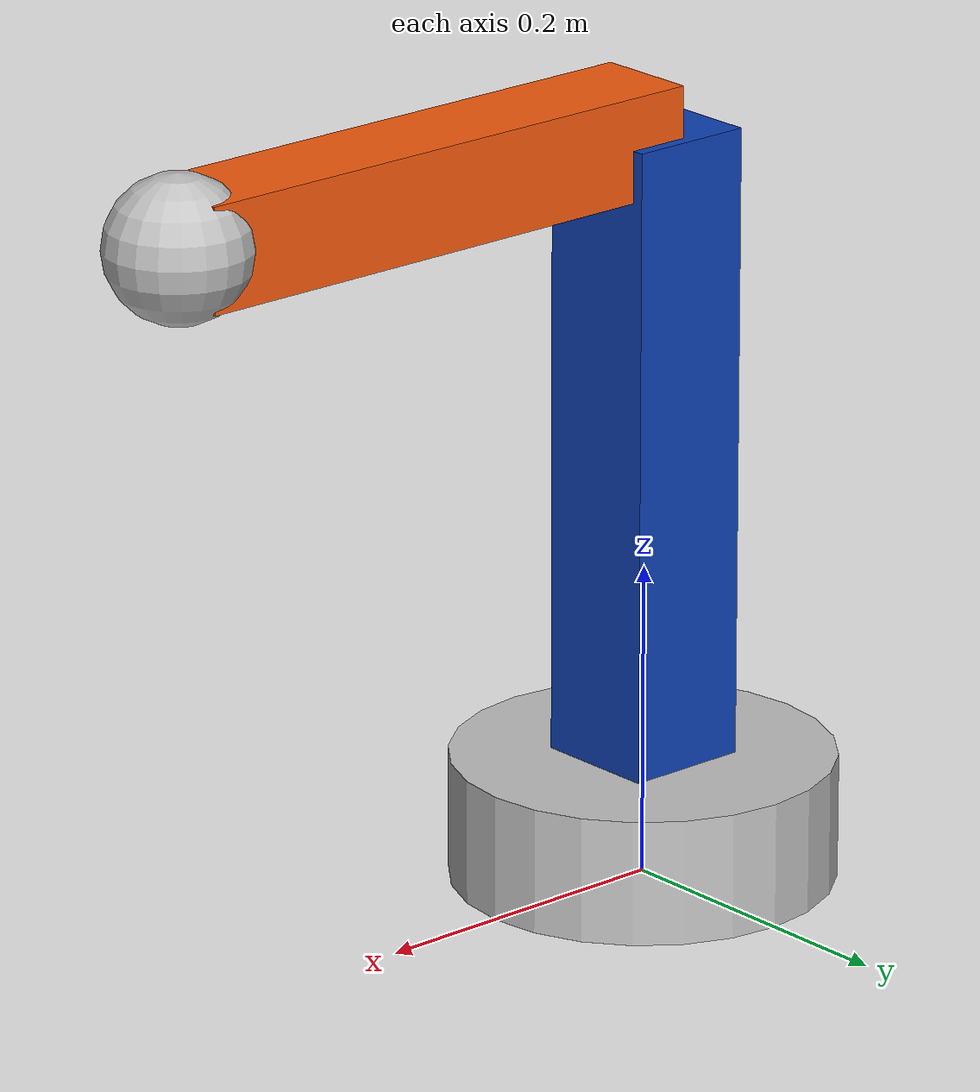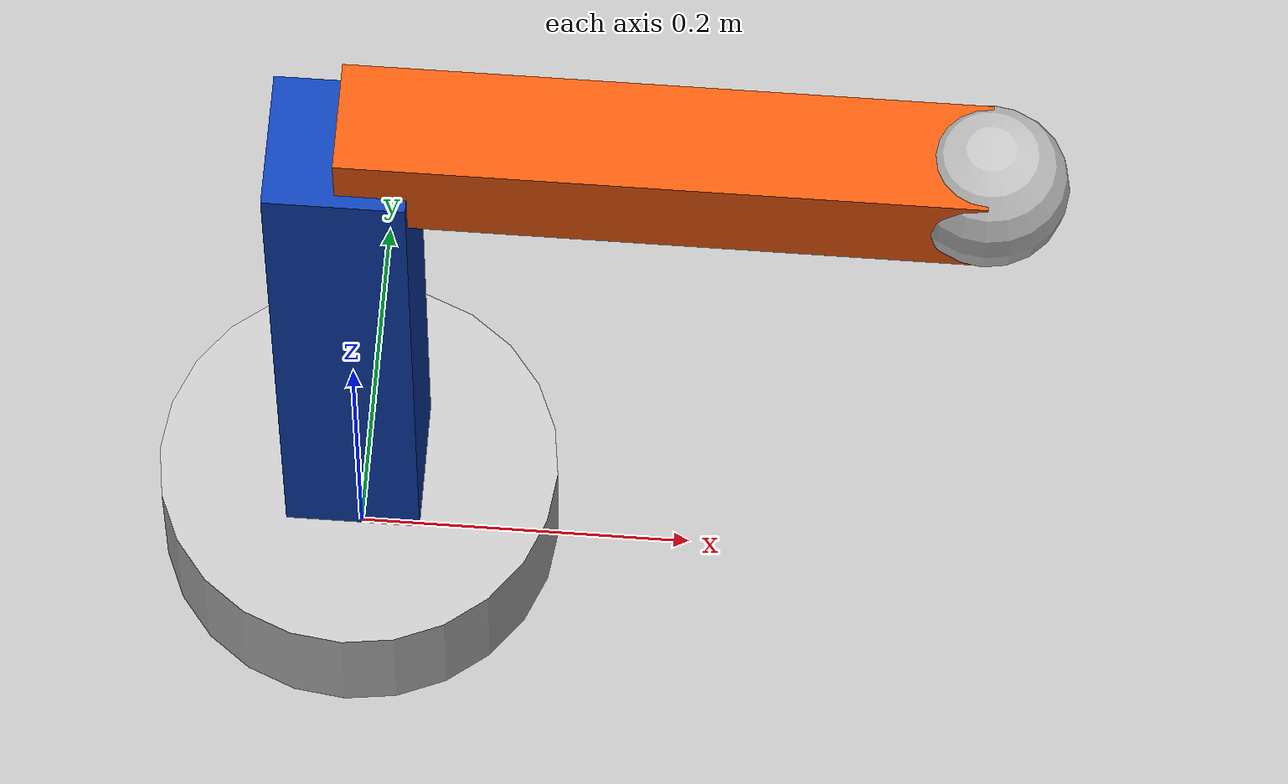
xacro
<?xml version="1.0"?>
<robot xmlns:xacro="http://www.ros.org/wiki/xacro" name="robotics_ii_xacro_robot">
  <xacro:property name="base_radius" value="0.12"/>
  <xacro:property name="base_height" value="0.08"/>
  <xacro:property name="upper_arm_length" value="0.40"/>
  <xacro:property name="upper_arm_width" value="0.08"/>
  <xacro:property name="upper_arm_mass" value="1.0"/>
  <xacro:property name="link_length" value="0.36"/>
  <xacro:property name="forearm_width" value="0.065"/>
  <xacro:property name="forearm_mass" value="0.60"/>

  <material name="course_blue"><color rgba="0.05 0.25 0.70 1"/></material>
  <material name="course_orange"><color rgba="0.95 0.35 0.05 1"/></material>
  <material name="course_grey"><color rgba="0.75 0.75 0.75 1"/></material>

  <xacro:macro name="box_link_x" params="name length width mass material">
    <link name="${name}">
      <visual>
        <origin xyz="${length / 2} 0 0" rpy="0 0 0"/>
        <geometry><box size="${length} ${width} ${width}"/></geometry>
        <material name="${material}"/>
      </visual>
      <collision>
        <origin xyz="${length / 2} 0 0" rpy="0 0 0"/>
        <geometry><box size="${length} ${width} ${width}"/></geometry>
      </collision>
      <inertial>
        <origin xyz="${length / 2} 0 0" rpy="0 0 0"/>
        <mass value="${mass}"/>
        <inertia
          ixx="${mass * (width * width + width * width) / 12}"
          ixy="0" ixz="0"
          iyy="${mass * (length * length + width * width) / 12}"
          iyz="0"
          izz="${mass * (length * length + width * width) / 12}"/>
      </inertial>
    </link>
  </xacro:macro>

  <xacro:macro name="box_link_z" params="name length width mass material">
    <link name="${name}">
      <visual>
        <origin xyz="0 0 ${length / 2}" rpy="0 0 0"/>
        <geometry><box size="${width} ${width} ${length}"/></geometry>
        <material name="${material}"/>
      </visual>
      <collision>
        <origin xyz="0 0 ${length / 2}" rpy="0 0 0"/>
        <geometry><box size="${width} ${width} ${length}"/></geometry>
      </collision>
      <inertial>
        <origin xyz="0 0 ${length / 2}" rpy="0 0 0"/>
        <mass value="${mass}"/>
        <inertia
          ixx="${mass * (width * width + length * length) / 12}"
          ixy="0" ixz="0"
          iyy="${mass * (width * width + length * length) / 12}"
          iyz="0"
          izz="${mass * (width * width + width * width) / 12}"/>
      </inertial>
    </link>
  </xacro:macro>

  <link name="world"/>

  <link name="base_link">
    <visual>
      <geometry><cylinder radius="${base_radius}" length="${base_height}"/></geometry>
      <material name="course_grey"/>
    </visual>
    <collision>
      <geometry><cylinder radius="${base_radius}" length="${base_height}"/></geometry>
    </collision>
    <inertial>
      <mass value="2.0"/>
      <inertia ixx="0.008" ixy="0.0" ixz="0.0"
               iyy="0.008" iyz="0.0" izz="0.014"/>
    </inertial>
  </link>

  <joint name="world_to_base" type="fixed">
    <parent link="world"/>
    <child link="base_link"/>
    <origin xyz="0 0 ${base_height / 2}" rpy="0 0 0"/>
  </joint>

  <xacro:box_link_z name="link_1"
                    length="${upper_arm_length}"
                    width="${upper_arm_width}"
                    mass="${upper_arm_mass}"
                    material="course_blue"/>

  <joint name="joint_1" type="revolute">
    <parent link="base_link"/>
    <child link="link_1"/>
    <origin xyz="0 0 ${base_height / 2}" rpy="0 0 0"/>
    <axis xyz="0 0 1"/>
    <limit lower="-2.8" upper="2.8" effort="20.0" velocity="1.5"/>
  </joint>

  <xacro:box_link_x name="link_2"
                    length="${link_length}"
                    width="${forearm_width}"
                    mass="${forearm_mass}"
                    material="course_orange"/>

  <joint name="joint_2" type="revolute">
    <parent link="link_1"/>
    <child link="link_2"/>
    <origin xyz="0 0 ${upper_arm_length}" rpy="0 0 0"/>
    <axis xyz="0 1 0"/>
    <limit lower="-1.57" upper="1.57" effort="10.0" velocity="1.5"/>
  </joint>

  <link name="tool0">
    <visual>
      <geometry><sphere radius="0.045"/></geometry>
      <material name="course_grey"/>
    </visual>
  </link>

  <joint name="tool_joint" type="fixed">
    <parent link="link_2"/>
    <child link="tool0"/>
    <origin xyz="${link_length} 0 0" rpy="0 0 0"/>
  </joint>
</robot>
